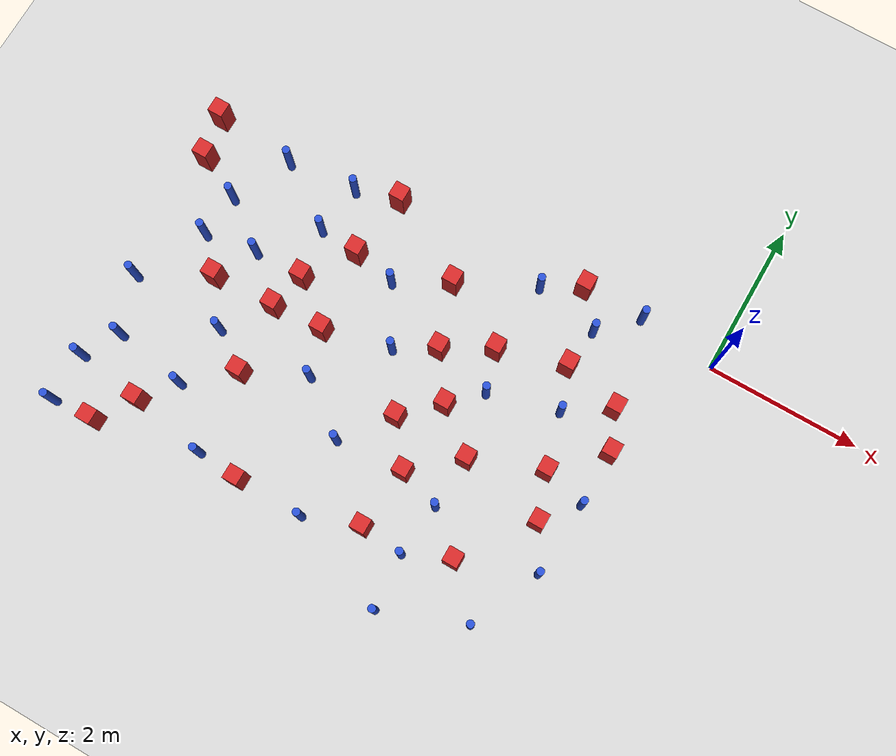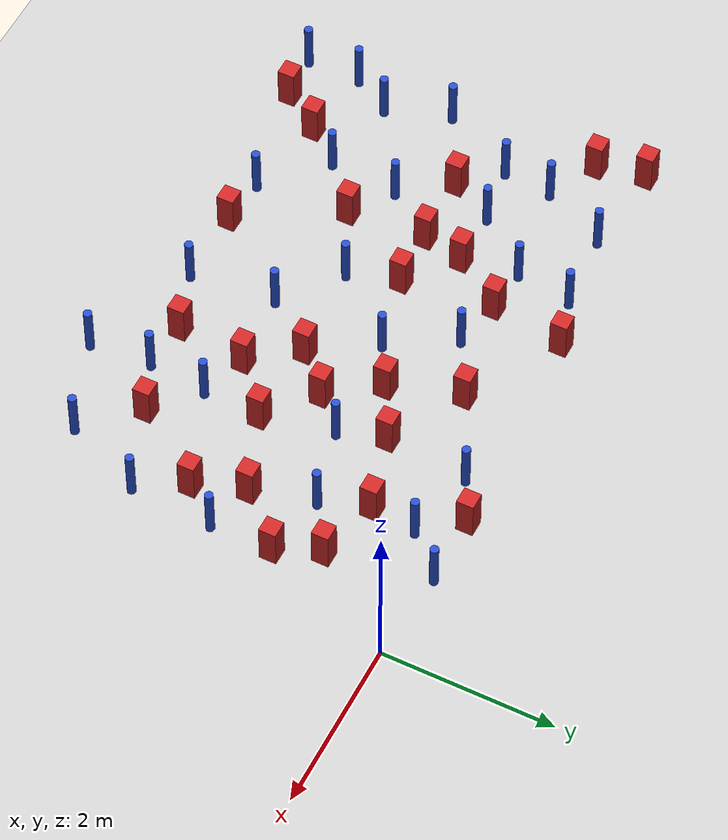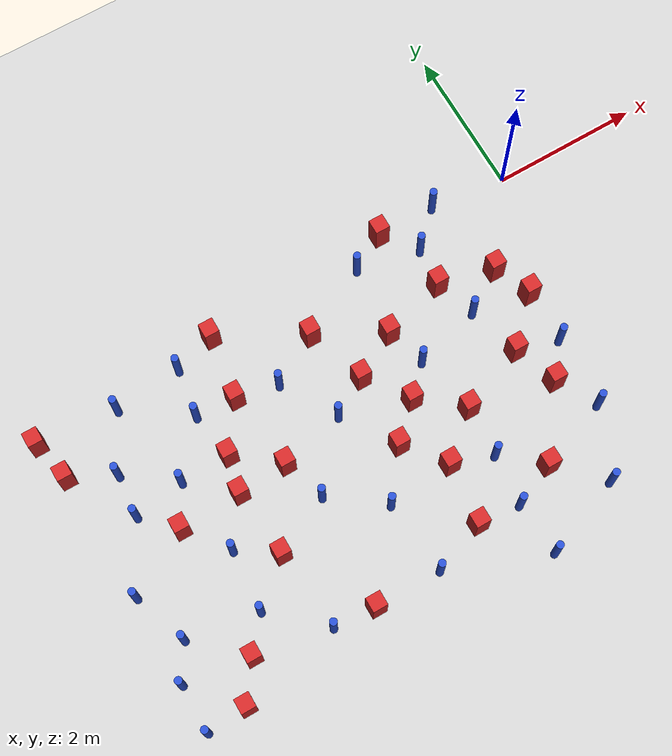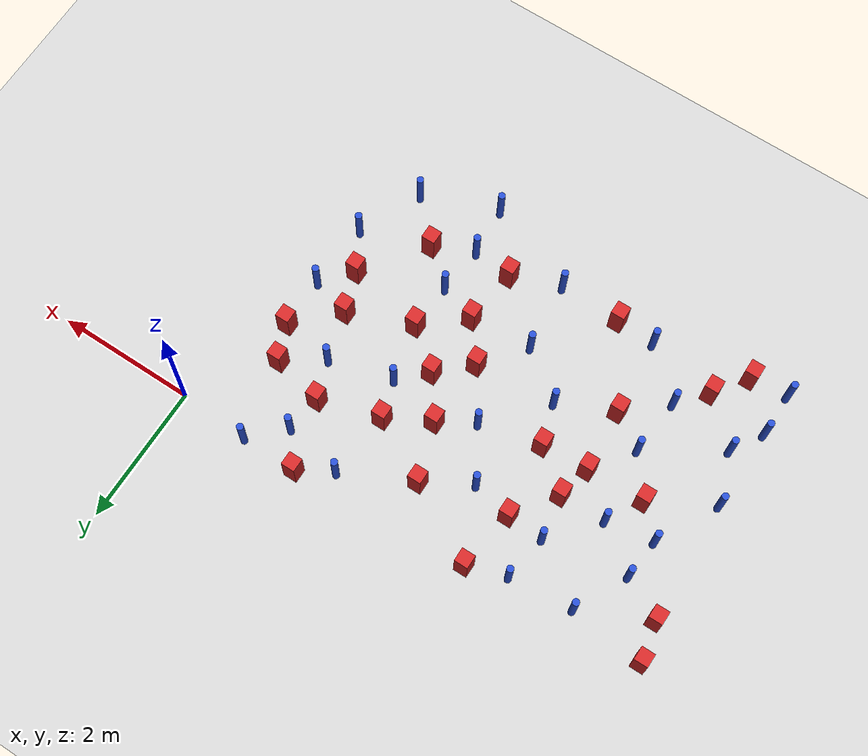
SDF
<sdf version="1.6">
 <world name="default">
  <model name="ground_plane">
   <static>1</static>
   <link name="link">
    <collision name="collision">
     <geometry><plane><normal>0 0 1</normal><size>100 100</size></plane></geometry>
     <surface><friction><ode><mu>100</mu><mu2>50</mu2></ode></friction></surface>
    </collision>
    <visual name="visual">
     <cast_shadows>0</cast_shadows>
     <geometry><plane><normal>0 0 1</normal><size>100 100</size></plane></geometry>
     <material>
      <ambient>1.0 1.0 1.0 1.0</ambient>
      <diffuse>0.8 0.8 0.8 1.0</diffuse>
      <specular>0.01 0.01 0.01 1.000000</specular>
     </material>
    </visual>
   </link>
  </model>
  <model name="square_post_obstacle8">
   <static>true</static>
   <pose>-4.433717044 -0.0601203227381 -6.11067671241e-07 -5.50515727128e-06 -8.79689657224e-07 2.37013304536e-05</pose>
   <link name="link">
    <pose>0 0 0.25 0 -0 0</pose>
    <inertial>
     <mass>100</mass>
     <inertia>
      <ixx>0.166667</ixx>
      <ixy>0</ixy>
      <ixz>0</ixz>
      <iyy>0.166667</iyy>
      <iyz>0</iyz>
      <izz>0.166667</izz>
     </inertia>
    </inertial>
    <collision name="collision"><geometry><box><size>.2 .2 .5</size></box></geometry></collision>
    <visual name="visual">
     <geometry><box><size>.2 .2 .5</size></box></geometry>
     <material>
      <script><name>Gazebo/Red</name><uri>file://media/materials/scripts/gazebo.material</uri></script>
     </material>
    </visual>
   </link>
  </model>
  <model name="square_post_obstacle12">
   <static>true</static>
   <pose>-3.31759820821 -0.67170505714 -6.11067671241e-07 -5.50515727128e-06 -8.79689657224e-07 2.37013304536e-05</pose>
   <link name="link">
    <pose>0 0 0.25 0 -0 0</pose>
    <inertial>
     <mass>100</mass>
     <inertia>
      <ixx>0.166667</ixx>
      <ixy>0</ixy>
      <ixz>0</ixz>
      <iyy>0.166667</iyy>
      <iyz>0</iyz>
      <izz>0.166667</izz>
     </inertia>
    </inertial>
    <collision name="collision"><geometry><box><size>.2 .2 .5</size></box></geometry></collision>
    <visual name="visual">
     <geometry><box><size>.2 .2 .5</size></box></geometry>
     <material>
      <script><name>Gazebo/Red</name><uri>file://media/materials/scripts/gazebo.material</uri></script>
     </material>
    </visual>
   </link>
  </model>
  <model name="pole_obstacle8">
   <static>true</static>
   <pose>-6.81686627947 -3.75061446823 -9.47619616065e-06 5.49618799738e-07 2.36310414051e-07 -1.55090534805e-07</pose>
   <link name="link">
    <pose>0 0 0.3 0 -0 0</pose>
    <inertial>
     <mass>1</mass>
     <inertia><ixx>0.145833</ixx><ixy>0</ixy><ixz>0</ixz><iyy>0.145833</iyy><iyz>0</iyz><izz>0.125</izz></inertia>
    </inertial>
    <collision name="collision">
     <geometry><cylinder><radius>0.05</radius><length>.6</length></cylinder></geometry>
    </collision>
    <visual name="visual">
     <geometry><cylinder><radius>0.05</radius><length>.6</length></cylinder></geometry>
     <material>
      <script><name>Gazebo/Blue</name><uri>file://media/materials/scripts/gazebo.material</uri></script>
     </material>
    </visual>
   </link>
  </model>
  <model name="pole_obstacle11">
   <static>true</static>
   <pose>-5.91703608631 -0.323611237796 -9.47619616065e-06 5.49618799737e-07 2.36310414057e-07 -1.55090534802e-07</pose>
   <link name="link">
    <pose>0 0 0.3 0 -0 0</pose>
    <inertial>
     <mass>1</mass>
     <inertia><ixx>0.145833</ixx><ixy>0</ixy><ixz>0</ixz><iyy>0.145833</iyy><iyz>0</iyz><izz>0.125</izz></inertia>
    </inertial>
    <collision name="collision">
     <geometry><cylinder><radius>0.05</radius><length>.6</length></cylinder></geometry>
    </collision>
    <visual name="visual">
     <geometry><cylinder><radius>0.05</radius><length>.6</length></cylinder></geometry>
     <material>
      <script><name>Gazebo/Blue</name><uri>file://media/materials/scripts/gazebo.material</uri></script>
     </material>
    </visual>
   </link>
  </model>
  <model name="square_post_obstacle31">
   <static>true</static>
   <pose>-4.42252655057 -1.9990934961 -6.11067671241e-07 -5.50515727128e-06 -8.79689657224e-07 2.37013304536e-05</pose>
   <link name="link">
    <pose>0 0 0.25 0 -0 0</pose>
    <inertial>
     <mass>100</mass>
     <inertia>
      <ixx>0.166667</ixx>
      <ixy>0</ixy>
      <ixz>0</ixz>
      <iyy>0.166667</iyy>
      <iyz>0</iyz>
      <izz>0.166667</izz>
     </inertia>
    </inertial>
    <collision name="collision"><geometry><box><size>.2 .2 .5</size></box></geometry></collision>
    <visual name="visual">
     <geometry><box><size>.2 .2 .5</size></box></geometry>
     <material>
      <script><name>Gazebo/Red</name><uri>file://media/materials/scripts/gazebo.material</uri></script>
     </material>
    </visual>
   </link>
  </model>
  <model name="pole_obstacle23">
   <static>true</static>
   <pose>-5.09441326082 -0.898342302564 -9.47619616065e-06 5.49618799737e-07 2.36310414061e-07 -1.550905348e-07</pose>
   <link name="link">
    <pose>0 0 0.3 0 -0 0</pose>
    <inertial>
     <mass>1</mass>
     <inertia><ixx>0.145833</ixx><ixy>0</ixy><ixz>0</ixz><iyy>0.145833</iyy><iyz>0</iyz><izz>0.125</izz></inertia>
    </inertial>
    <collision name="collision">
     <geometry><cylinder><radius>0.05</radius><length>.6</length></cylinder></geometry>
    </collision>
    <visual name="visual">
     <geometry><cylinder><radius>0.05</radius><length>.6</length></cylinder></geometry>
     <material>
      <script><name>Gazebo/Blue</name><uri>file://media/materials/scripts/gazebo.material</uri></script>
     </material>
    </visual>
   </link>
  </model>
  <model name="pole_obstacle34">
   <static>true</static>
   <pose>-3.44959208647 -4.10936466104 -9.4761961606e-06 5.49618799729e-07 2.36310414006e-07 -1.55090534822e-07</pose>
   <link name="link">
    <pose>0 0 0.3 0 -0 0</pose>
    <inertial>
     <mass>1</mass>
     <inertia><ixx>0.145833</ixx><ixy>0</ixy><ixz>0</ixz><iyy>0.145833</iyy><iyz>0</iyz><izz>0.125</izz></inertia>
    </inertial>
    <collision name="collision">
     <geometry><cylinder><radius>0.05</radius><length>.6</length></cylinder></geometry>
    </collision>
    <visual name="visual">
     <geometry><cylinder><radius>0.05</radius><length>.6</length></cylinder></geometry>
     <material>
      <script><name>Gazebo/Blue</name><uri>file://media/materials/scripts/gazebo.material</uri></script>
     </material>
    </visual>
   </link>
  </model>
  <model name="pole_obstacle35">
   <static>true</static>
   <pose>-4.23813969492 -2.59038138995 -9.47619616065e-06 5.49618799738e-07 2.36310414051e-07 -1.55090534805e-07</pose>
   <link name="link">
    <pose>0 0 0.3 0 -0 0</pose>
    <inertial>
     <mass>1</mass>
     <inertia><ixx>0.145833</ixx><ixy>0</ixy><ixz>0</ixz><iyy>0.145833</iyy><iyz>0</iyz><izz>0.125</izz></inertia>
    </inertial>
    <collision name="collision">
     <geometry><cylinder><radius>0.05</radius><length>.6</length></cylinder></geometry>
    </collision>
    <visual name="visual">
     <geometry><cylinder><radius>0.05</radius><length>.6</length></cylinder></geometry>
     <material>
      <script><name>Gazebo/Blue</name><uri>file://media/materials/scripts/gazebo.material</uri></script>
     </material>
    </visual>
   </link>
  </model>
  <model name="square_post_obstacle37">
   <static>true</static>
   <pose>-2.74594555894 -3.84434896067 -6.11067671241e-07 -5.50515727128e-06 -8.79689657224e-07 2.37013304536e-05</pose>
   <link name="link">
    <pose>0 0 0.25 0 -0 0</pose>
    <inertial>
     <mass>100</mass>
     <inertia>
      <ixx>0.166667</ixx>
      <ixy>0</ixy>
      <ixz>0</ixz>
      <iyy>0.166667</iyy>
      <iyz>0</iyz>
      <izz>0.166667</izz>
     </inertia>
    </inertial>
    <collision name="collision"><geometry><box><size>.2 .2 .5</size></box></geometry></collision>
    <visual name="visual">
     <geometry><box><size>.2 .2 .5</size></box></geometry>
     <material>
      <script><name>Gazebo/Red</name><uri>file://media/materials/scripts/gazebo.material</uri></script>
     </material>
    </visual>
   </link>
  </model>
  <model name="pole_obstacle37">
   <static>true</static>
   <pose>-2.10346815041 -3.20745514181 -9.47619616065e-06 5.49618799737e-07 2.36310414051e-07 -1.55090534807e-07</pose>
   <link name="link">
    <pose>0 0 0.3 0 -0 0</pose>
    <inertial>
     <mass>1</mass>
     <inertia><ixx>0.145833</ixx><ixy>0</ixy><ixz>0</ixz><iyy>0.145833</iyy><iyz>0</iyz><izz>0.125</izz></inertia>
    </inertial>
    <collision name="collision">
     <geometry><cylinder><radius>0.05</radius><length>.6</length></cylinder></geometry>
    </collision>
    <visual name="visual">
     <geometry><cylinder><radius>0.05</radius><length>.6</length></cylinder></geometry>
     <material>
      <script><name>Gazebo/Blue</name><uri>file://media/materials/scripts/gazebo.material</uri></script>
     </material>
    </visual>
   </link>
  </model>
  <model name="square_post_obstacle44">
   <static>true</static>
   <pose>-0.591806549888 -1.58459430745 -6.11067671241e-07 -5.50515727128e-06 -8.79689657224e-07 2.37013304536e-05</pose>
   <link name="link">
    <pose>0 0 0.25 0 -0 0</pose>
    <inertial>
     <mass>100</mass>
     <inertia>
      <ixx>0.166667</ixx>
      <ixy>0</ixy>
      <ixz>0</ixz>
      <iyy>0.166667</iyy>
      <iyz>0</iyz>
      <izz>0.166667</izz>
     </inertia>
    </inertial>
    <collision name="collision"><geometry><box><size>.2 .2 .5</size></box></geometry></collision>
    <visual name="visual">
     <geometry><box><size>.2 .2 .5</size></box></geometry>
     <material>
      <script><name>Gazebo/Red</name><uri>file://media/materials/scripts/gazebo.material</uri></script>
     </material>
    </visual>
   </link>
  </model>
  <model name="pole_obstacle52">
   <static>true</static>
   <pose>-6.81798520431 -4.3943691527 -9.47619616065e-06 5.49618799737e-07 2.36310414037e-07 -1.55090534814e-07</pose>
   <link name="link">
    <pose>0 0 0.3 0 -0 0</pose>
    <inertial>
     <mass>1</mass>
     <inertia><ixx>0.145833</ixx><ixy>0</ixy><ixz>0</ixz><iyy>0.145833</iyy><iyz>0</iyz><izz>0.125</izz></inertia>
    </inertial>
    <collision name="collision">
     <geometry><cylinder><radius>0.05</radius><length>.6</length></cylinder></geometry>
    </collision>
    <visual name="visual">
     <geometry><cylinder><radius>0.05</radius><length>.6</length></cylinder></geometry>
     <material>
      <script><name>Gazebo/Blue</name><uri>file://media/materials/scripts/gazebo.material</uri></script>
     </material>
    </visual>
   </link>
  </model>
  <model name="square_post_obstacle58">
   <static>true</static>
   <pose>-4.55759651176 -0.934104828123 -6.11067671241e-07 -5.50515727128e-06 -8.79689657224e-07 2.37013304536e-05</pose>
   <link name="link">
    <pose>0 0 0.25 0 -0 0</pose>
    <inertial>
     <mass>100</mass>
     <inertia>
      <ixx>0.166667</ixx>
      <ixy>0</ixy>
      <ixz>0</ixz>
      <iyy>0.166667</iyy>
      <iyz>0</iyz>
      <izz>0.166667</izz>
     </inertia>
    </inertial>
    <collision name="collision"><geometry><box><size>.2 .2 .5</size></box></geometry></collision>
    <visual name="visual">
     <geometry><box><size>.2 .2 .5</size></box></geometry>
     <material>
      <script><name>Gazebo/Red</name><uri>file://media/materials/scripts/gazebo.material</uri></script>
     </material>
    </visual>
   </link>
  </model>
  <model name="pole_obstacle56">
   <static>true</static>
   <pose>-2.34232136024 -0.182884183567 -9.47619616065e-06 5.49618799737e-07 2.36310414076e-07 -1.55090534792e-07</pose>
   <link name="link">
    <pose>0 0 0.3 0 -0 0</pose>
    <inertial>
     <mass>1</mass>
     <inertia><ixx>0.145833</ixx><ixy>0</ixy><ixz>0</ixz><iyy>0.145833</iyy><iyz>0</iyz><izz>0.125</izz></inertia>
    </inertial>
    <collision name="collision">
     <geometry><cylinder><radius>0.05</radius><length>.6</length></cylinder></geometry>
    </collision>
    <visual name="visual">
     <geometry><cylinder><radius>0.05</radius><length>.6</length></cylinder></geometry>
     <material>
      <script><name>Gazebo/Blue</name><uri>file://media/materials/scripts/gazebo.material</uri></script>
     </material>
    </visual>
   </link>
  </model>
  <model name="pole_obstacle62">
   <static>true</static>
   <pose>-5.58334489522 -3.4533464085 -9.47619616065e-06 5.49618799738e-07 2.36310414051e-07 -1.55090534805e-07</pose>
   <link name="link">
    <pose>0 0 0.3 0 -0 0</pose>
    <inertial>
     <mass>1</mass>
     <inertia><ixx>0.145833</ixx><ixy>0</ixy><ixz>0</ixz><iyy>0.145833</iyy><iyz>0</iyz><izz>0.125</izz></inertia>
    </inertial>
    <collision name="collision">
     <geometry><cylinder><radius>0.05</radius><length>.6</length></cylinder></geometry>
    </collision>
    <visual name="visual">
     <geometry><cylinder><radius>0.05</radius><length>.6</length></cylinder></geometry>
     <material>
      <script><name>Gazebo/Blue</name><uri>file://media/materials/scripts/gazebo.material</uri></script>
     </material>
    </visual>
   </link>
  </model>
  <model name="pole_obstacle63">
   <static>true</static>
   <pose>-1.49164877298 -0.358333165225 -9.47619616065e-06 5.49618799737e-07 2.36310414064e-07 -1.55090534799e-07</pose>
   <link name="link">
    <pose>0 0 0.3 0 -0 0</pose>
    <inertial>
     <mass>1</mass>
     <inertia><ixx>0.145833</ixx><ixy>0</ixy><ixz>0</ixz><iyy>0.145833</iyy><iyz>0</iyz><izz>0.125</izz></inertia>
    </inertial>
    <collision name="collision">
     <geometry><cylinder><radius>0.05</radius><length>.6</length></cylinder></geometry>
    </collision>
    <visual name="visual">
     <geometry><cylinder><radius>0.05</radius><length>.6</length></cylinder></geometry>
     <material>
      <script><name>Gazebo/Blue</name><uri>file://media/materials/scripts/gazebo.material</uri></script>
     </material>
    </visual>
   </link>
  </model>
  <model name="square_post_obstacle70">
   <static>true</static>
   <pose>-6.99028681641 -0.226447590478 -6.11067671241e-07 -5.50515727128e-06 -8.79689657224e-07 2.37013304536e-05</pose>
   <link name="link">
    <pose>0 0 0.25 0 -0 0</pose>
    <inertial>
     <mass>100</mass>
     <inertia>
      <ixx>0.166667</ixx>
      <ixy>0</ixy>
      <ixz>0</ixz>
      <iyy>0.166667</iyy>
      <iyz>0</iyz>
      <izz>0.166667</izz>
     </inertia>
    </inertial>
    <collision name="collision"><geometry><box><size>.2 .2 .5</size></box></geometry></collision>
    <visual name="visual">
     <geometry><box><size>.2 .2 .5</size></box></geometry>
     <material>
      <script><name>Gazebo/Red</name><uri>file://media/materials/scripts/gazebo.material</uri></script>
     </material>
    </visual>
   </link>
  </model>
  <model name="pole_obstacle67">
   <static>true</static>
   <pose>-5.51830773205 -2.6310646329 -9.47619616065e-06 5.49618799738e-07 2.36310414051e-07 -1.55090534805e-07</pose>
   <link name="link">
    <pose>0 0 0.3 0 -0 0</pose>
    <inertial>
     <mass>1</mass>
     <inertia><ixx>0.145833</ixx><ixy>0</ixy><ixz>0</ixz><iyy>0.145833</iyy><iyz>0</iyz><izz>0.125</izz></inertia>
    </inertial>
    <collision name="collision">
     <geometry><cylinder><radius>0.05</radius><length>.6</length></cylinder></geometry>
    </collision>
    <visual name="visual">
     <geometry><cylinder><radius>0.05</radius><length>.6</length></cylinder></geometry>
     <material>
      <script><name>Gazebo/Blue</name><uri>file://media/materials/scripts/gazebo.material</uri></script>
     </material>
    </visual>
   </link>
  </model>
  <model name="pole_obstacle68">
   <static>true</static>
   <pose>-1.04189569256 -4.21336534452 -9.47619616065e-06 5.49618799737e-07 2.36310414062e-07 -1.55090534799e-07</pose>
   <link name="link">
    <pose>0 0 0.3 0 -0 0</pose>
    <inertial>
     <mass>1</mass>
     <inertia><ixx>0.145833</ixx><ixy>0</ixy><ixz>0</ixz><iyy>0.145833</iyy><iyz>0</iyz><izz>0.125</izz></inertia>
    </inertial>
    <collision name="collision">
     <geometry><cylinder><radius>0.05</radius><length>.6</length></cylinder></geometry>
    </collision>
    <visual name="visual">
     <geometry><cylinder><radius>0.05</radius><length>.6</length></cylinder></geometry>
     <material>
      <script><name>Gazebo/Blue</name><uri>file://media/materials/scripts/gazebo.material</uri></script>
     </material>
    </visual>
   </link>
  </model>
  <model name="pole_obstacle72">
   <static>true</static>
   <pose>-0.633843887171 -3.29175647082 -9.47619616065e-06 5.49618799737e-07 2.36310414066e-07 -1.55090534797e-07</pose>
   <link name="link">
    <pose>0 0 0.3 0 -0 0</pose>
    <inertial>
     <mass>1</mass>
     <inertia><ixx>0.145833</ixx><ixy>0</ixy><ixz>0</ixz><iyy>0.145833</iyy><iyz>0</iyz><izz>0.125</izz></inertia>
    </inertial>
    <collision name="collision">
     <geometry><cylinder><radius>0.05</radius><length>.6</length></cylinder></geometry>
    </collision>
    <visual name="visual">
     <geometry><cylinder><radius>0.05</radius><length>.6</length></cylinder></geometry>
     <material>
      <script><name>Gazebo/Blue</name><uri>file://media/materials/scripts/gazebo.material</uri></script>
     </material>
    </visual>
   </link>
  </model>
  <model name="pole_obstacle79">
   <static>true</static>
   <pose>-3.98429028523 -1.05149667507 -9.47619616076e-06 5.49618799749e-07 2.36310414117e-07 -1.5509053478e-07</pose>
   <link name="link">
    <pose>0 0 0.3 0 -0 0</pose>
    <inertial>
     <mass>1</mass>
     <inertia><ixx>0.145833</ixx><ixy>0</ixy><ixz>0</ixz><iyy>0.145833</iyy><iyz>0</iyz><izz>0.125</izz></inertia>
    </inertial>
    <collision name="collision">
     <geometry><cylinder><radius>0.05</radius><length>.6</length></cylinder></geometry>
    </collision>
    <visual name="visual">
     <geometry><cylinder><radius>0.05</radius><length>.6</length></cylinder></geometry>
     <material>
      <script><name>Gazebo/Blue</name><uri>file://media/materials/scripts/gazebo.material</uri></script>
     </material>
    </visual>
   </link>
  </model>
  <model name="square_post_obstacle78">
   <static>true</static>
   <pose>-6.27146831163 -4.34957577962 -6.11067671241e-07 -5.50515727128e-06 -8.79689657224e-07 2.37013304536e-05</pose>
   <link name="link">
    <pose>0 0 0.25 0 -0 0</pose>
    <inertial>
     <mass>100</mass>
     <inertia>
      <ixx>0.166667</ixx>
      <ixy>0</ixy>
      <ixz>0</ixz>
      <iyy>0.166667</iyy>
      <iyz>0</iyz>
      <izz>0.166667</izz>
     </inertia>
    </inertial>
    <collision name="collision"><geometry><box><size>.2 .2 .5</size></box></geometry></collision>
    <visual name="visual">
     <geometry><box><size>.2 .2 .5</size></box></geometry>
     <material>
      <script><name>Gazebo/Red</name><uri>file://media/materials/scripts/gazebo.material</uri></script>
     </material>
    </visual>
   </link>
  </model>
  <model name="pole_obstacle86">
   <static>true</static>
   <pose>-4.99966897291 -0.235841153928 -9.47619616065e-06 5.49618799737e-07 2.36310414066e-07 -1.55090534799e-07</pose>
   <link name="link">
    <pose>0 0 0.3 0 -0 0</pose>
    <inertial>
     <mass>1</mass>
     <inertia><ixx>0.145833</ixx><ixy>0</ixy><ixz>0</ixz><iyy>0.145833</iyy><iyz>0</iyz><izz>0.125</izz></inertia>
    </inertial>
    <collision name="collision">
     <geometry><cylinder><radius>0.05</radius><length>.6</length></cylinder></geometry>
    </collision>
    <visual name="visual">
     <geometry><cylinder><radius>0.05</radius><length>.6</length></cylinder></geometry>
     <material>
      <script><name>Gazebo/Blue</name><uri>file://media/materials/scripts/gazebo.material</uri></script>
     </material>
    </visual>
   </link>
  </model>
  <model name="pole_obstacle89">
   <static>true</static>
   <pose>-1.35563742297 -1.44552761411 -9.47619616065e-06 5.49618799737e-07 2.36310414065e-07 -1.55090534798e-07</pose>
   <link name="link">
    <pose>0 0 0.3 0 -0 0</pose>
    <inertial>
     <mass>1</mass>
     <inertia><ixx>0.145833</ixx><ixy>0</ixy><ixz>0</ixz><iyy>0.145833</iyy><iyz>0</iyz><izz>0.125</izz></inertia>
    </inertial>
    <collision name="collision">
     <geometry><cylinder><radius>0.05</radius><length>.6</length></cylinder></geometry>
    </collision>
    <visual name="visual">
     <geometry><cylinder><radius>0.05</radius><length>.6</length></cylinder></geometry>
     <material>
      <script><name>Gazebo/Blue</name><uri>file://media/materials/scripts/gazebo.material</uri></script>
     </material>
    </visual>
   </link>
  </model>
  <model name="square_post_obstacle91">
   <static>true</static>
   <pose>-5.93622232439 -2.07328653192 -6.11067671241e-07 -5.50515727128e-06 -8.79689657224e-07 2.37013304536e-05</pose>
   <link name="link">
    <pose>0 0 0.25 0 -0 0</pose>
    <inertial>
     <mass>100</mass>
     <inertia>
      <ixx>0.166667</ixx>
      <ixy>0</ixy>
      <ixz>0</ixz>
      <iyy>0.166667</iyy>
      <iyz>0</iyz>
      <izz>0.166667</izz>
     </inertia>
    </inertial>
    <collision name="collision"><geometry><box><size>.2 .2 .5</size></box></geometry></collision>
    <visual name="visual">
     <geometry><box><size>.2 .2 .5</size></box></geometry>
     <material>
      <script><name>Gazebo/Red</name><uri>file://media/materials/scripts/gazebo.material</uri></script>
     </material>
    </visual>
   </link>
  </model>
  <model name="pole_obstacle103">
   <static>true</static>
   <pose>-0.58582108518 -2.31666930911 -9.47619616065e-06 5.49618799737e-07 2.36310414066e-07 -1.55090534797e-07</pose>
   <link name="link">
    <pose>0 0 0.3 0 -0 0</pose>
    <inertial>
     <mass>1</mass>
     <inertia><ixx>0.145833</ixx><ixy>0</ixy><ixz>0</ixz><iyy>0.145833</iyy><iyz>0</iyz><izz>0.125</izz></inertia>
    </inertial>
    <collision name="collision">
     <geometry><cylinder><radius>0.05</radius><length>.6</length></cylinder></geometry>
    </collision>
    <visual name="visual">
     <geometry><cylinder><radius>0.05</radius><length>.6</length></cylinder></geometry>
     <material>
      <script><name>Gazebo/Blue</name><uri>file://media/materials/scripts/gazebo.material</uri></script>
     </material>
    </visual>
   </link>
  </model>
  <model name="square_post_obstacle96">
   <static>true</static>
   <pose>-3.0746170027 -2.48766675123 -6.11067671241e-07 -5.50515727128e-06 -8.79689657224e-07 2.37013304536e-05</pose>
   <link name="link">
    <pose>0 0 0.25 0 -0 0</pose>
    <inertial>
     <mass>100</mass>
     <inertia>
      <ixx>0.166667</ixx>
      <ixy>0</ixy>
      <ixz>0</ixz>
      <iyy>0.166667</iyy>
      <iyz>0</iyz>
      <izz>0.166667</izz>
     </inertia>
    </inertial>
    <collision name="collision"><geometry><box><size>.2 .2 .5</size></box></geometry></collision>
    <visual name="visual">
     <geometry><box><size>.2 .2 .5</size></box></geometry>
     <material>
      <script><name>Gazebo/Red</name><uri>file://media/materials/scripts/gazebo.material</uri></script>
     </material>
    </visual>
   </link>
  </model>
  <model name="square_post_obstacle105">
   <static>true</static>
   <pose>-2.43244975417 -1.15271491053 -6.11067671241e-07 -5.50515727128e-06 -8.79689657224e-07 2.37013304536e-05</pose>
   <link name="link">
    <pose>0 0 0.25 0 -0 0</pose>
    <inertial>
     <mass>100</mass>
     <inertia>
      <ixx>0.166667</ixx>
      <ixy>0</ixy>
      <ixz>0</ixz>
      <iyy>0.166667</iyy>
      <iyz>0</iyz>
      <izz>0.166667</izz>
     </inertia>
    </inertial>
    <collision name="collision"><geometry><box><size>.2 .2 .5</size></box></geometry></collision>
    <visual name="visual">
     <geometry><box><size>.2 .2 .5</size></box></geometry>
     <material>
      <script><name>Gazebo/Red</name><uri>file://media/materials/scripts/gazebo.material</uri></script>
     </material>
    </visual>
   </link>
  </model>
  <model name="square_post_obstacle106">
   <static>true</static>
   <pose>-2.07098787565 -2.51668262018 -6.11067671241e-07 -5.50515727128e-06 -8.79689657224e-07 2.37013304536e-05</pose>
   <link name="link">
    <pose>0 0 0.25 0 -0 0</pose>
    <inertial>
     <mass>100</mass>
     <inertia>
      <ixx>0.166667</ixx>
      <ixy>0</ixy>
      <ixz>0</ixz>
      <iyy>0.166667</iyy>
      <iyz>0</iyz>
      <izz>0.166667</izz>
     </inertia>
    </inertial>
    <collision name="collision"><geometry><box><size>.2 .2 .5</size></box></geometry></collision>
    <visual name="visual">
     <geometry><box><size>.2 .2 .5</size></box></geometry>
     <material>
      <script><name>Gazebo/Red</name><uri>file://media/materials/scripts/gazebo.material</uri></script>
     </material>
    </visual>
   </link>
  </model>
  <model name="pole_obstacle123">
   <static>true</static>
   <pose>-2.114783764 -4.62526533387 -9.47619616065e-06 5.49618799738e-07 2.3631041406e-07 -1.55090534801e-07</pose>
   <link name="link">
    <pose>0 0 0.3 0 -0 0</pose>
    <inertial>
     <mass>1</mass>
     <inertia><ixx>0.145833</ixx><ixy>0</ixy><ixz>0</ixz><iyy>0.145833</iyy><iyz>0</iyz><izz>0.125</izz></inertia>
    </inertial>
    <collision name="collision">
     <geometry><cylinder><radius>0.05</radius><length>.6</length></cylinder></geometry>
    </collision>
    <visual name="visual">
     <geometry><cylinder><radius>0.05</radius><length>.6</length></cylinder></geometry>
     <material>
      <script><name>Gazebo/Blue</name><uri>file://media/materials/scripts/gazebo.material</uri></script>
     </material>
    </visual>
   </link>
  </model>
  <model name="pole_obstacle140">
   <static>true</static>
   <pose>-3.54342042892 -1.78800619479 -9.47619616065e-06 5.49618799737e-07 2.36310414072e-07 -1.55090534793e-07</pose>
   <link name="link">
    <pose>0 0 0.3 0 -0 0</pose>
    <inertial>
     <mass>1</mass>
     <inertia><ixx>0.145833</ixx><ixy>0</ixy><ixz>0</ixz><iyy>0.145833</iyy><iyz>0</iyz><izz>0.125</izz></inertia>
    </inertial>
    <collision name="collision">
     <geometry><cylinder><radius>0.05</radius><length>.6</length></cylinder></geometry>
    </collision>
    <visual name="visual">
     <geometry><cylinder><radius>0.05</radius><length>.6</length></cylinder></geometry>
     <material>
      <script><name>Gazebo/Blue</name><uri>file://media/materials/scripts/gazebo.material</uri></script>
     </material>
    </visual>
   </link>
  </model>
  <model name="square_post_obstacle127">
   <static>true</static>
   <pose>-6.87263878416 -0.790440457671 -6.11067671241e-07 -5.50515727128e-06 -8.79689657224e-07 2.37013304536e-05</pose>
   <link name="link">
    <pose>0 0 0.25 0 -0 0</pose>
    <inertial>
     <mass>100</mass>
     <inertia>
      <ixx>0.166667</ixx>
      <ixy>0</ixy>
      <ixz>0</ixz>
      <iyy>0.166667</iyy>
      <iyz>0</iyz>
      <izz>0.166667</izz>
     </inertia>
    </inertial>
    <collision name="collision"><geometry><box><size>.2 .2 .5</size></box></geometry></collision>
    <visual name="visual">
     <geometry><box><size>.2 .2 .5</size></box></geometry>
     <material>
      <script><name>Gazebo/Red</name><uri>file://media/materials/scripts/gazebo.material</uri></script>
     </material>
    </visual>
   </link>
  </model>
  <model name="pole_obstacle142">
   <static>true</static>
   <pose>-6.34076174064 -1.66675066021 -9.47619616065e-06 5.49618799738e-07 2.36310414071e-07 -1.55090534796e-07</pose>
   <link name="link">
    <pose>0 0 0.3 0 -0 0</pose>
    <inertial>
     <mass>1</mass>
     <inertia><ixx>0.145833</ixx><ixy>0</ixy><ixz>0</ixz><iyy>0.145833</iyy><iyz>0</iyz><izz>0.125</izz></inertia>
    </inertial>
    <collision name="collision">
     <geometry><cylinder><radius>0.05</radius><length>.6</length></cylinder></geometry>
    </collision>
    <visual name="visual">
     <geometry><cylinder><radius>0.05</radius><length>.6</length></cylinder></geometry>
     <material>
      <script><name>Gazebo/Blue</name><uri>file://media/materials/scripts/gazebo.material</uri></script>
     </material>
    </visual>
   </link>
  </model>
  <model name="square_post_obstacle132">
   <static>true</static>
   <pose>-0.945937299575 -2.74649542337 -6.11067671241e-07 -5.50515727128e-06 -8.79689657224e-07 2.37013304536e-05</pose>
   <link name="link">
    <pose>0 0 0.25 0 -0 0</pose>
    <inertial>
     <mass>100</mass>
     <inertia>
      <ixx>0.166667</ixx>
      <ixy>0</ixy>
      <ixz>0</ixz>
      <iyy>0.166667</iyy>
      <iyz>0</iyz>
      <izz>0.166667</izz>
     </inertia>
    </inertial>
    <collision name="collision"><geometry><box><size>.2 .2 .5</size></box></geometry></collision>
    <visual name="visual">
     <geometry><box><size>.2 .2 .5</size></box></geometry>
     <material>
      <script><name>Gazebo/Red</name><uri>file://media/materials/scripts/gazebo.material</uri></script>
     </material>
    </visual>
   </link>
  </model>
  <model name="pole_obstacle143">
   <static>true</static>
   <pose>-5.65442396186 -1.55685415827 -9.47619616065e-06 5.49618799738e-07 2.36310414071e-07 -1.55090534796e-07</pose>
   <link name="link">
    <pose>0 0 0.3 0 -0 0</pose>
    <inertial>
     <mass>1</mass>
     <inertia><ixx>0.145833</ixx><ixy>0</ixy><ixz>0</ixz><iyy>0.145833</iyy><iyz>0</iyz><izz>0.125</izz></inertia>
    </inertial>
    <collision name="collision">
     <geometry><cylinder><radius>0.05</radius><length>.6</length></cylinder></geometry>
    </collision>
    <visual name="visual">
     <geometry><cylinder><radius>0.05</radius><length>.6</length></cylinder></geometry>
     <material>
      <script><name>Gazebo/Blue</name><uri>file://media/materials/scripts/gazebo.material</uri></script>
     </material>
    </visual>
   </link>
  </model>
  <model name="square_post_obstacle133">
   <static>true</static>
   <pose>-2.65686085724 -3.02277836762 -6.11067671241e-07 -5.50515727128e-06 -8.79689657224e-07 2.37013304536e-05</pose>
   <link name="link">
    <pose>0 0 0.25 0 -0 0</pose>
    <inertial>
     <mass>100</mass>
     <inertia>
      <ixx>0.166667</ixx>
      <ixy>0</ixy>
      <ixz>0</ixz>
      <iyy>0.166667</iyy>
      <iyz>0</iyz>
      <izz>0.166667</izz>
     </inertia>
    </inertial>
    <collision name="collision"><geometry><box><size>.2 .2 .5</size></box></geometry></collision>
    <visual name="visual">
     <geometry><box><size>.2 .2 .5</size></box></geometry>
     <material>
      <script><name>Gazebo/Red</name><uri>file://media/materials/scripts/gazebo.material</uri></script>
     </material>
    </visual>
   </link>
  </model>
  <model name="square_post_obstacle143">
   <static>true</static>
   <pose>-4.98636376426 -1.54441505861 -6.11067671241e-07 -5.50515727128e-06 -8.79689657224e-07 2.37013304536e-05</pose>
   <link name="link">
    <pose>0 0 0.25 0 -0 0</pose>
    <inertial>
     <mass>100</mass>
     <inertia>
      <ixx>0.166667</ixx>
      <ixy>0</ixy>
      <ixz>0</ixz>
      <iyy>0.166667</iyy>
      <iyz>0</iyz>
      <izz>0.166667</izz>
     </inertia>
    </inertial>
    <collision name="collision"><geometry><box><size>.2 .2 .5</size></box></geometry></collision>
    <visual name="visual">
     <geometry><box><size>.2 .2 .5</size></box></geometry>
     <material>
      <script><name>Gazebo/Red</name><uri>file://media/materials/scripts/gazebo.material</uri></script>
     </material>
    </visual>
   </link>
  </model>
  <model name="pole_obstacle154">
   <static>true</static>
   <pose>-6.54550959302 -3.29344358298 -9.47619616065e-06 5.49618799738e-07 2.36310414051e-07 -1.55090534805e-07</pose>
   <link name="link">
    <pose>0 0 0.3 0 -0 0</pose>
    <inertial>
     <mass>1</mass>
     <inertia><ixx>0.145833</ixx><ixy>0</ixy><ixz>0</ixz><iyy>0.145833</iyy><iyz>0</iyz><izz>0.125</izz></inertia>
    </inertial>
    <collision name="collision">
     <geometry><cylinder><radius>0.05</radius><length>.6</length></cylinder></geometry>
    </collision>
    <visual name="visual">
     <geometry><cylinder><radius>0.05</radius><length>.6</length></cylinder></geometry>
     <material>
      <script><name>Gazebo/Blue</name><uri>file://media/materials/scripts/gazebo.material</uri></script>
     </material>
    </visual>
   </link>
  </model>
  <model name="square_post_obstacle152">
   <static>true</static>
   <pose>-5.92855679399 -3.87039088782 -6.11067671241e-07 -5.50515727128e-06 -8.79689657224e-07 2.37013304536e-05</pose>
   <link name="link">
    <pose>0 0 0.25 0 -0 0</pose>
    <inertial>
     <mass>100</mass>
     <inertia>
      <ixx>0.166667</ixx>
      <ixy>0</ixy>
      <ixz>0</ixz>
      <iyy>0.166667</iyy>
      <iyz>0</iyz>
      <izz>0.166667</izz>
     </inertia>
    </inertial>
    <collision name="collision"><geometry><box><size>.2 .2 .5</size></box></geometry></collision>
    <visual name="visual">
     <geometry><box><size>.2 .2 .5</size></box></geometry>
     <material>
      <script><name>Gazebo/Red</name><uri>file://media/materials/scripts/gazebo.material</uri></script>
     </material>
    </visual>
   </link>
  </model>
  <model name="pole_obstacle160">
   <static>true</static>
   <pose>-6.80477614605 -2.55743497997 -9.47619616065e-06 5.49618799738e-07 2.36310414051e-07 -1.55090534805e-07</pose>
   <link name="link">
    <pose>0 0 0.3 0 -0 0</pose>
    <inertial>
     <mass>1</mass>
     <inertia><ixx>0.145833</ixx><ixy>0</ixy><ixz>0</ixz><iyy>0.145833</iyy><iyz>0</iyz><izz>0.125</izz></inertia>
    </inertial>
    <collision name="collision">
     <geometry><cylinder><radius>0.05</radius><length>.6</length></cylinder></geometry>
    </collision>
    <visual name="visual">
     <geometry><cylinder><radius>0.05</radius><length>.6</length></cylinder></geometry>
     <material>
      <script><name>Gazebo/Blue</name><uri>file://media/materials/scripts/gazebo.material</uri></script>
     </material>
    </visual>
   </link>
  </model>
  <model name="square_post_obstacle158">
   <static>true</static>
   <pose>-1.59981415198 -3.6420371045 -6.11067671241e-07 -5.50515727128e-06 -8.79689657224e-07 2.37013304536e-05</pose>
   <link name="link">
    <pose>0 0 0.25 0 -0 0</pose>
    <inertial>
     <mass>100</mass>
     <inertia>
      <ixx>0.166667</ixx>
      <ixy>0</ixy>
      <ixz>0</ixz>
      <iyy>0.166667</iyy>
      <iyz>0</iyz>
      <izz>0.166667</izz>
     </inertia>
    </inertial>
    <collision name="collision"><geometry><box><size>.2 .2 .5</size></box></geometry></collision>
    <visual name="visual">
     <geometry><box><size>.2 .2 .5</size></box></geometry>
     <material>
      <script><name>Gazebo/Red</name><uri>file://media/materials/scripts/gazebo.material</uri></script>
     </material>
    </visual>
   </link>
  </model>
  <model name="pole_obstacle167">
   <static>true</static>
   <pose>-1.04318384183 0.0901878122999 -9.47619616065e-06 5.49618799737e-07 2.36310414066e-07 -1.55090534795e-07</pose>
   <link name="link">
    <pose>0 0 0.3 0 -0 0</pose>
    <inertial>
     <mass>1</mass>
     <inertia><ixx>0.145833</ixx><ixy>0</ixy><ixz>0</ixz><iyy>0.145833</iyy><iyz>0</iyz><izz>0.125</izz></inertia>
    </inertial>
    <collision name="collision">
     <geometry><cylinder><radius>0.05</radius><length>.6</length></cylinder></geometry>
    </collision>
    <visual name="visual">
     <geometry><cylinder><radius>0.05</radius><length>.6</length></cylinder></geometry>
     <material>
      <script><name>Gazebo/Blue</name><uri>file://media/materials/scripts/gazebo.material</uri></script>
     </material>
    </visual>
   </link>
  </model>
  <model name="square_post_obstacle172">
   <static>true</static>
   <pose>-4.34661323538 -4.09741578803 -6.11067671241e-07 -5.50515727128e-06 -8.79689657224e-07 2.37013304536e-05</pose>
   <link name="link">
    <pose>0 0 0.25 0 -0 0</pose>
    <inertial>
     <mass>100</mass>
     <inertia>
      <ixx>0.166667</ixx>
      <ixy>0</ixy>
      <ixz>0</ixz>
      <iyy>0.166667</iyy>
      <iyz>0</iyz>
      <izz>0.166667</izz>
     </inertia>
    </inertial>
    <collision name="collision"><geometry><box><size>.2 .2 .5</size></box></geometry></collision>
    <visual name="visual">
     <geometry><box><size>.2 .2 .5</size></box></geometry>
     <material>
      <script><name>Gazebo/Red</name><uri>file://media/materials/scripts/gazebo.material</uri></script>
     </material>
    </visual>
   </link>
  </model>
  <model name="square_post_obstacle179">
   <static>true</static>
   <pose>-3.04438372247 -1.49160123409 -6.11067671241e-07 -5.50515727128e-06 -8.79689657224e-07 2.37013304536e-05</pose>
   <link name="link">
    <pose>0 0 0.25 0 -0 0</pose>
    <inertial>
     <mass>100</mass>
     <inertia>
      <ixx>0.166667</ixx>
      <ixy>0</ixy>
      <ixz>0</ixz>
      <iyy>0.166667</iyy>
      <iyz>0</iyz>
      <izz>0.166667</izz>
     </inertia>
    </inertial>
    <collision name="collision"><geometry><box><size>.2 .2 .5</size></box></geometry></collision>
    <visual name="visual">
     <geometry><box><size>.2 .2 .5</size></box></geometry>
     <material>
      <script><name>Gazebo/Red</name><uri>file://media/materials/scripts/gazebo.material</uri></script>
     </material>
    </visual>
   </link>
  </model>
  <model name="square_post_obstacle183">
   <static>true</static>
   <pose>-0.805968723497 -1.07757621114 -6.11067671241e-07 -5.50515727128e-06 -8.79689657224e-07 2.37013304536e-05</pose>
   <link name="link">
    <pose>0 0 0.25 0 -0 0</pose>
    <inertial>
     <mass>100</mass>
     <inertia>
      <ixx>0.166667</ixx>
      <ixy>0</ixy>
      <ixz>0</ixz>
      <iyy>0.166667</iyy>
      <iyz>0</iyz>
      <izz>0.166667</izz>
     </inertia>
    </inertial>
    <collision name="collision"><geometry><box><size>.2 .2 .5</size></box></geometry></collision>
    <visual name="visual">
     <geometry><box><size>.2 .2 .5</size></box></geometry>
     <material>
      <script><name>Gazebo/Red</name><uri>file://media/materials/scripts/gazebo.material</uri></script>
     </material>
    </visual>
   </link>
  </model>
  <model name="square_post_obstacle197">
   <static>true</static>
   <pose>-1.85458352011 0.0894044144346 -6.11067671241e-07 -5.50515727128e-06 -8.79689657224e-07 2.37013304536e-05</pose>
   <link name="link">
    <pose>0 0 0.25 0 -0 0</pose>
    <inertial>
     <mass>100</mass>
     <inertia>
      <ixx>0.166667</ixx>
      <ixy>0</ixy>
      <ixz>0</ixz>
      <iyy>0.166667</iyy>
      <iyz>0</iyz>
      <izz>0.166667</izz>
     </inertia>
    </inertial>
    <collision name="collision"><geometry><box><size>.2 .2 .5</size></box></geometry></collision>
    <visual name="visual">
     <geometry><box><size>.2 .2 .5</size></box></geometry>
     <material>
      <script><name>Gazebo/Red</name><uri>file://media/materials/scripts/gazebo.material</uri></script>
     </material>
    </visual>
   </link>
  </model>
  <model name="pole_obstacle193">
   <static>true</static>
   <pose>-6.29142700734 -1.08813632396 -9.47619616065e-06 5.49618799738e-07 2.36310414071e-07 -1.55090534796e-07</pose>
   <link name="link">
    <pose>0 0 0.3 0 -0 0</pose>
    <inertial>
     <mass>1</mass>
     <inertia><ixx>0.145833</ixx><ixy>0</ixy><ixz>0</ixz><iyy>0.145833</iyy><iyz>0</iyz><izz>0.125</izz></inertia>
    </inertial>
    <collision name="collision">
     <geometry><cylinder><radius>0.05</radius><length>.6</length></cylinder></geometry>
    </collision>
    <visual name="visual">
     <geometry><cylinder><radius>0.05</radius><length>.6</length></cylinder></geometry>
     <material>
      <script><name>Gazebo/Blue</name><uri>file://media/materials/scripts/gazebo.material</uri></script>
     </material>
    </visual>
   </link>
  </model>
  <model name="pole_obstacle195">
   <static>true</static>
   <pose>-2.26154428775 -1.69149661438 -9.47619616065e-06 5.49618799737e-07 2.36310414072e-07 -1.55090534793e-07</pose>
   <link name="link">
    <pose>0 0 0.3 0 -0 0</pose>
    <inertial>
     <mass>1</mass>
     <inertia><ixx>0.145833</ixx><ixy>0</ixy><ixz>0</ixz><iyy>0.145833</iyy><iyz>0</iyz><izz>0.125</izz></inertia>
    </inertial>
    <collision name="collision">
     <geometry><cylinder><radius>0.05</radius><length>.6</length></cylinder></geometry>
    </collision>
    <visual name="visual">
     <geometry><cylinder><radius>0.05</radius><length>.6</length></cylinder></geometry>
     <material>
      <script><name>Gazebo/Blue</name><uri>file://media/materials/scripts/gazebo.material</uri></script>
     </material>
    </visual>
   </link>
  </model>
  <model name="pole_obstacle212">
   <static>true</static>
   <pose>-3.55130322172 -3.10650908075 -9.47619616065e-06 5.49618799737e-07 2.36310414051e-07 -1.55090534807e-07</pose>
   <link name="link">
    <pose>0 0 0.3 0 -0 0</pose>
    <inertial>
     <mass>1</mass>
     <inertia><ixx>0.145833</ixx><ixy>0</ixy><ixz>0</ixz><iyy>0.145833</iyy><iyz>0</iyz><izz>0.125</izz></inertia>
    </inertial>
    <collision name="collision">
     <geometry><cylinder><radius>0.05</radius><length>.6</length></cylinder></geometry>
    </collision>
    <visual name="visual">
     <geometry><cylinder><radius>0.05</radius><length>.6</length></cylinder></geometry>
     <material>
      <script><name>Gazebo/Blue</name><uri>file://media/materials/scripts/gazebo.material</uri></script>
     </material>
    </visual>
   </link>
  </model>
  <model name="pole_obstacle214">
   <static>true</static>
   <pose>-2.17370327151 -3.90270114008 -9.47619616065e-06 5.49618799737e-07 2.36310414051e-07 -1.55090534807e-07</pose>
   <link name="link">
    <pose>0 0 0.3 0 -0 0</pose>
    <inertial>
     <mass>1</mass>
     <inertia><ixx>0.145833</ixx><ixy>0</ixy><ixz>0</ixz><iyy>0.145833</iyy><iyz>0</iyz><izz>0.125</izz></inertia>
    </inertial>
    <collision name="collision">
     <geometry><cylinder><radius>0.05</radius><length>.6</length></cylinder></geometry>
    </collision>
    <visual name="visual">
     <geometry><cylinder><radius>0.05</radius><length>.6</length></cylinder></geometry>
     <material>
      <script><name>Gazebo/Blue</name><uri>file://media/materials/scripts/gazebo.material</uri></script>
     </material>
    </visual>
   </link>
  </model>
  <model name="pole_obstacle221">
   <static>true</static>
   <pose>-4.91836414584 -4.06206044977 -9.47619616065e-06 5.49618799737e-07 2.36310414037e-07 -1.55090534814e-07</pose>
   <link name="link">
    <pose>0 0 0.3 0 -0 0</pose>
    <inertial>
     <mass>1</mass>
     <inertia><ixx>0.145833</ixx><ixy>0</ixy><ixz>0</ixz><iyy>0.145833</iyy><iyz>0</iyz><izz>0.125</izz></inertia>
    </inertial>
    <collision name="collision">
     <geometry><cylinder><radius>0.05</radius><length>.6</length></cylinder></geometry>
    </collision>
    <visual name="visual">
     <geometry><cylinder><radius>0.05</radius><length>.6</length></cylinder></geometry>
     <material>
      <script><name>Gazebo/Blue</name><uri>file://media/materials/scripts/gazebo.material</uri></script>
     </material>
    </visual>
   </link>
  </model>
  <model name="square_post_obstacle208">
   <static>true</static>
   <pose>-1.1563700498 -2.15725002312 -6.11067671241e-07 -5.50515727128e-06 -8.79689657224e-07 2.37013304536e-05</pose>
   <link name="link">
    <pose>0 0 0.25 0 -0 0</pose>
    <inertial>
     <mass>100</mass>
     <inertia>
      <ixx>0.166667</ixx>
      <ixy>0</ixy>
      <ixz>0</ixz>
      <iyy>0.166667</iyy>
      <iyz>0</iyz>
      <izz>0.166667</izz>
     </inertia>
    </inertial>
    <collision name="collision"><geometry><box><size>.2 .2 .5</size></box></geometry></collision>
    <visual name="visual">
     <geometry><box><size>.2 .2 .5</size></box></geometry>
     <material>
      <script><name>Gazebo/Red</name><uri>file://media/materials/scripts/gazebo.material</uri></script>
     </material>
    </visual>
   </link>
  </model>
  <model name="square_post_obstacle209">
   <static>true</static>
   <pose>-5.0979400498 -2.03936002312 -6.11067671241e-07 -5.50515727128e-06 -8.79689657224e-07 2.37013304536e-05</pose>
   <link name="link">
    <pose>0 0 0.25 0 -0 0</pose>
    <inertial>
     <mass>100</mass>
     <inertia>
      <ixx>0.166667</ixx>
      <ixy>0</ixy>
      <ixz>0</ixz>
      <iyy>0.166667</iyy>
      <iyz>0</iyz>
      <izz>0.166667</izz>
     </inertia>
    </inertial>
    <collision name="collision"><geometry><box><size>.2 .2 .5</size></box></geometry></collision>
    <visual name="visual">
     <geometry><box><size>.2 .2 .5</size></box></geometry>
     <material>
      <script><name>Gazebo/Red</name><uri>file://media/materials/scripts/gazebo.material</uri></script>
     </material>
    </visual>
   </link>
  </model>
  <model name="square_post_obstacle212">
   <static>true</static>
   <pose>-1.5568400498 -0.893614023122 -6.11067671241e-07 -5.50515727128e-06 -8.79689657224e-07 2.37013304536e-05</pose>
   <link name="link">
    <pose>0 0 0.25 0 -0 0</pose>
    <inertial>
     <mass>100</mass>
     <inertia>
      <ixx>0.166667</ixx>
      <ixy>0</ixy>
      <ixz>0</ixz>
      <iyy>0.166667</iyy>
      <iyz>0</iyz>
      <izz>0.166667</izz>
     </inertia>
    </inertial>
    <collision name="collision"><geometry><box><size>.2 .2 .5</size></box></geometry></collision>
    <visual name="visual">
     <geometry><box><size>.2 .2 .5</size></box></geometry>
     <material>
      <script><name>Gazebo/Red</name><uri>file://media/materials/scripts/gazebo.material</uri></script>
     </material>
    </visual>
   </link>
  </model>
  <model name="square_post_obstacle213">
   <static>true</static>
   <pose>-5.0207600498 -2.95964002312 -6.11067671241e-07 -5.50515727128e-06 -8.79689657224e-07 2.37013304536e-05</pose>
   <link name="link">
    <pose>0 0 0.25 0 -0 0</pose>
    <inertial>
     <mass>100</mass>
     <inertia>
      <ixx>0.166667</ixx>
      <ixy>0</ixy>
      <ixz>0</ixz>
      <iyy>0.166667</iyy>
      <iyz>0</iyz>
      <izz>0.166667</izz>
     </inertia>
    </inertial>
    <collision name="collision"><geometry><box><size>.2 .2 .5</size></box></geometry></collision>
    <visual name="visual">
     <geometry><box><size>.2 .2 .5</size></box></geometry>
     <material>
      <script><name>Gazebo/Red</name><uri>file://media/materials/scripts/gazebo.material</uri></script>
     </material>
    </visual>
   </link>
  </model>
  <model name="square_post_obstacle218">
   <static>true</static>
   <pose>-2.6318300498 -2.06013002312 -6.11067671241e-07 -5.50515727128e-06 -8.79689657224e-07 2.37013304536e-05</pose>
   <link name="link">
    <pose>0 0 0.25 0 -0 0</pose>
    <inertial>
     <mass>100</mass>
     <inertia>
      <ixx>0.166667</ixx>
      <ixy>0</ixy>
      <ixz>0</ixz>
      <iyy>0.166667</iyy>
      <iyz>0</iyz>
      <izz>0.166667</izz>
     </inertia>
    </inertial>
    <collision name="collision"><geometry><box><size>.2 .2 .5</size></box></geometry></collision>
    <visual name="visual">
     <geometry><box><size>.2 .2 .5</size></box></geometry>
     <material>
      <script><name>Gazebo/Red</name><uri>file://media/materials/scripts/gazebo.material</uri></script>
     </material>
    </visual>
   </link>
  </model>
 </world>
</sdf>
